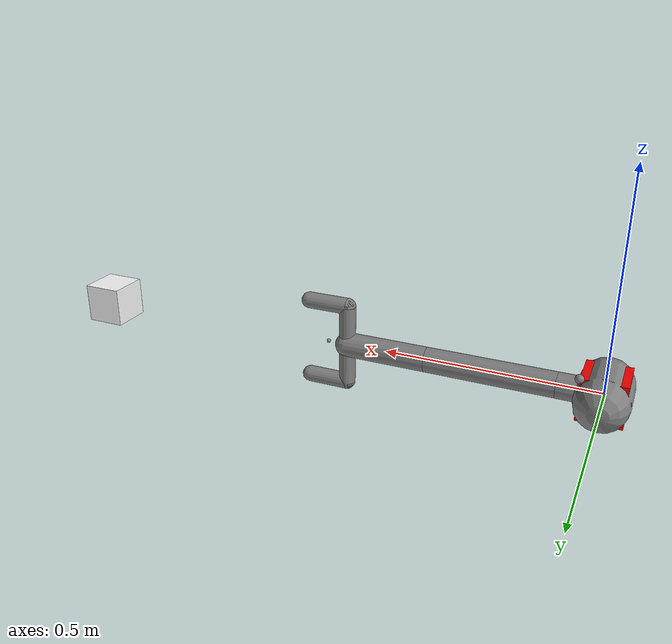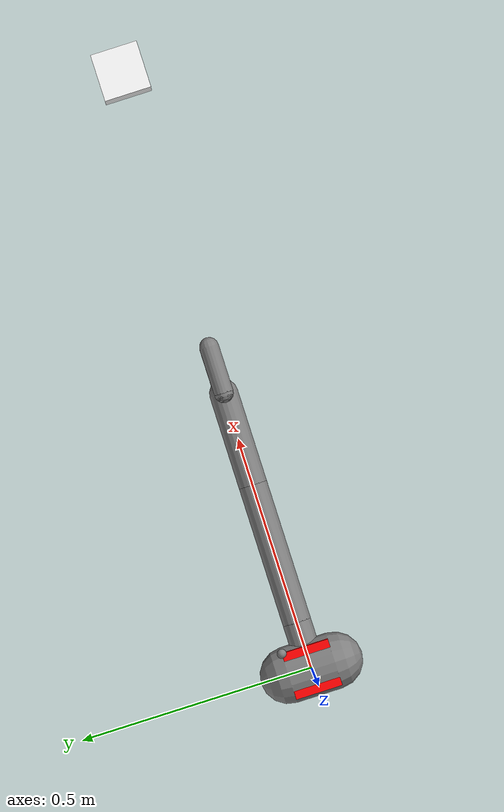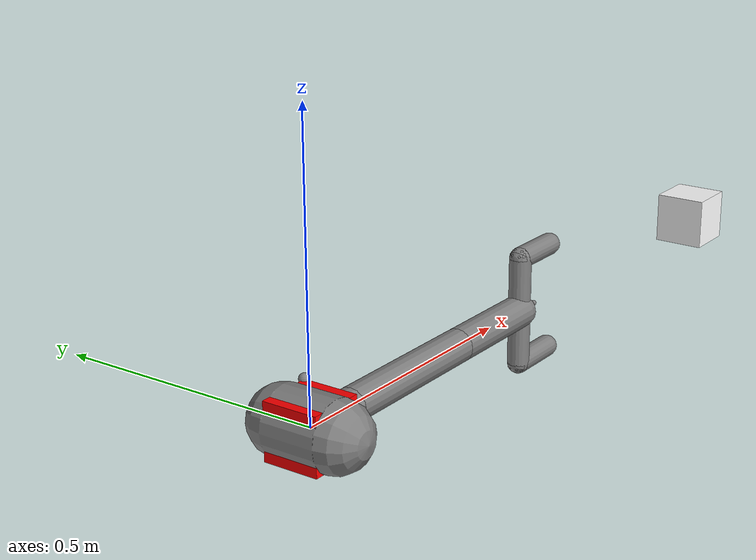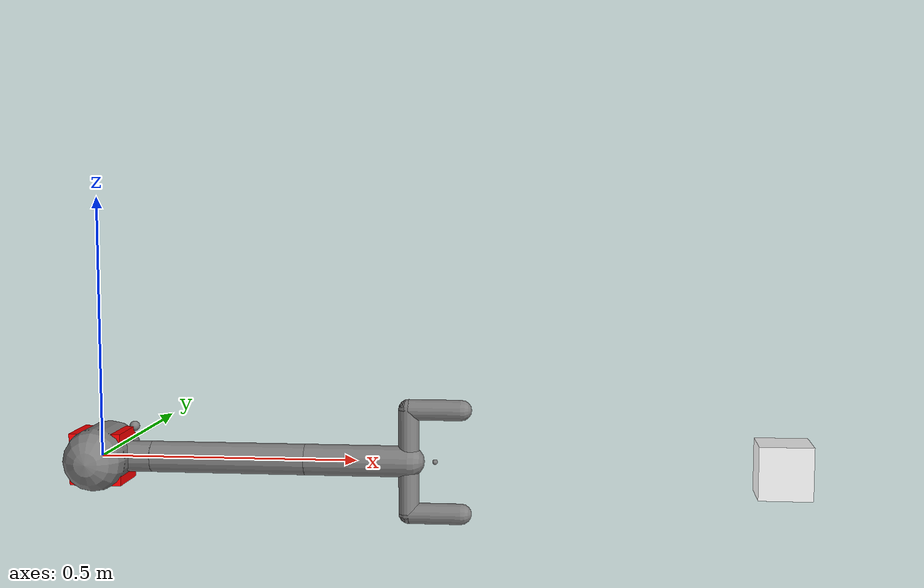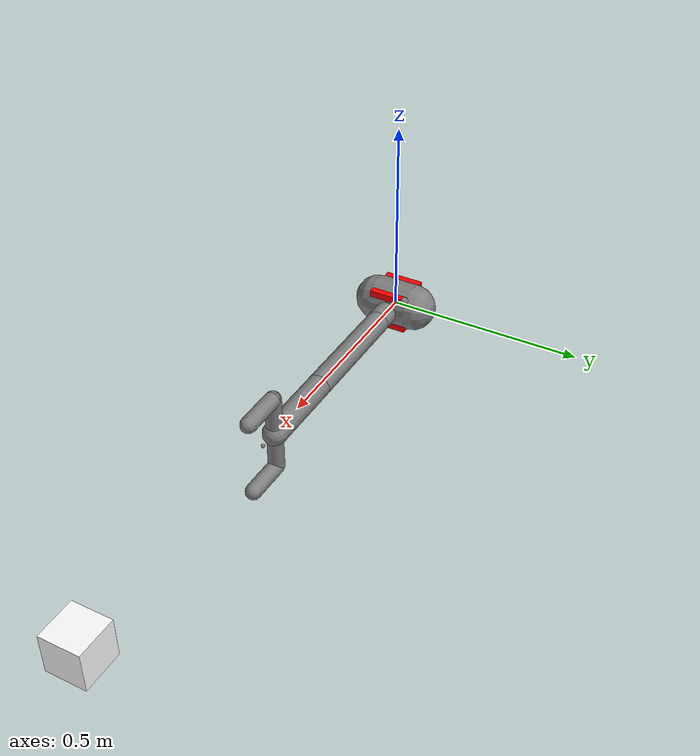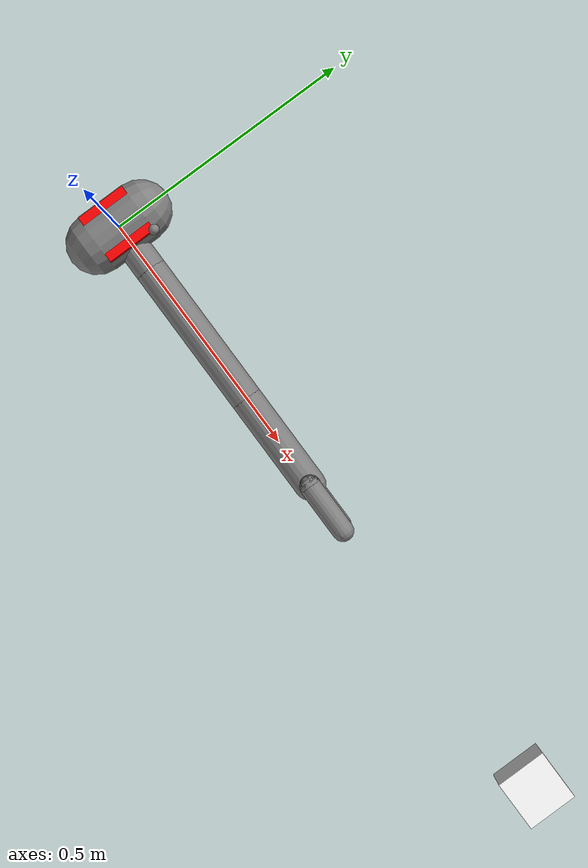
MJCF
<mujoco model="arm3d">
    <compiler inertiafromgeom="true" angle="radian" coordinate="local" />
    <option timestep="0.01" gravity="0 0 0" iterations="20" integrator="Euler" />

    <default>
        <joint armature='0.04' damping="1" limited="true"/>
        <geom friction=".8 .1 .1" density="300" margin="0.002" condim="1" contype="1" conaffinity="1"/>
    </default>

    <worldbody>
        <body name="palm" pos="0 0 0">
            <geom type="capsule" fromto="0 -0.05 0 0 0.05 0" size="0.06"/>
            <body name="proximal_1" pos="0 0 0">
                <joint name="proximal_j_1" type="hinge" pos="0 0 0" axis="0 1 0" range="-2.5236 2.3963" damping="1.0" />
                <geom type="capsule"  fromto="0 0 0 0.1 0 0" size="0.03" contype="1" conaffinity="1"/>
                <body name="distal_1" pos="0.1 0 0">
                    <joint name="distal_j_1" type="hinge" pos="0 0 0" axis="0 0 1" range="-2.3213 2.3" damping="1.0"/>
                    <geom type="capsule"  fromto="0 0 0 0.3 0 0" size="0.03" contype="1" conaffinity="1"/>
                    <body name="distal_2" pos="0.3 0 0">
                        <joint name="distal_j_2" type="hinge" pos="0 0 0" axis="0 1 0" range="-2.3213 2.3" damping="1.0"/>
                        <geom type="capsule" fromto="0 0 0 0.2 0 0" size="0.03" contype="1" conaffinity="1"/>
                        <body name="distal_4" pos="0.2 0 0">
                            <site name="tip arm" pos="0.05 0 0" size="0.005" />
                            <geom type="capsule" fromto="0 0 -0.1 0 0 0.1" size="0.02" contype="1" conaffinity="1" />
                            <geom type="capsule" fromto="0 0 -0.1 0.1 0 -0.1" size="0.02" contype="1" conaffinity="1" />
                            <geom type="capsule" fromto="0 0 0.1 0.1 0 0.1" size="0.02" contype="1" conaffinity="1" />
                        </body>
                    </body>
                </body>
            </body>
        </body>
        <body name="object" pos="1.3 0.0 0.0">
            <geom rgba="1. 1. 1. 1" type="box" size="0.05 0.05 0.05" density='0.00001' contype="1" conaffinity="1"/>
            <joint name="obj_slidez" type="slide" pos="0.1 0.05 0.05" axis="0 0 1" range="-10.3213 10.3" damping="0.5"/>
            <joint name="obj_slidex" type="slide" pos="0.05 0.05 0.05" axis="1 0 0" range="-10.3213 10.3" damping="0.5"/>
            <body name="distal_10" pos="0 0 0">
                <site name="obj_pos" pos="0.025 0.025 0.025" size="0.01" />
            </body>
        </body>

        <body name="goal" pos="0 0 0">
            <geom rgba="1. 0. 0. 1" type="box" size="0.05 0.05 0.05" density='0.00001' contype="0" conaffinity="0"/>
            <body name="distal_11" pos="0 0 0">
                <site name="goal_pos" pos="0.05 0.05 0.05" size="0.01" />
            </body>
        </body>
    </worldbody>

    <actuator>
        <motor joint="proximal_j_1" ctrlrange="-2 2" ctrllimited="true"/>
        <motor joint="distal_j_1" ctrlrange="-2 2" ctrllimited="true"/>
        <motor joint="distal_j_2" ctrlrange="-2 2" ctrllimited="true"/>
    </actuator>
</mujoco>
